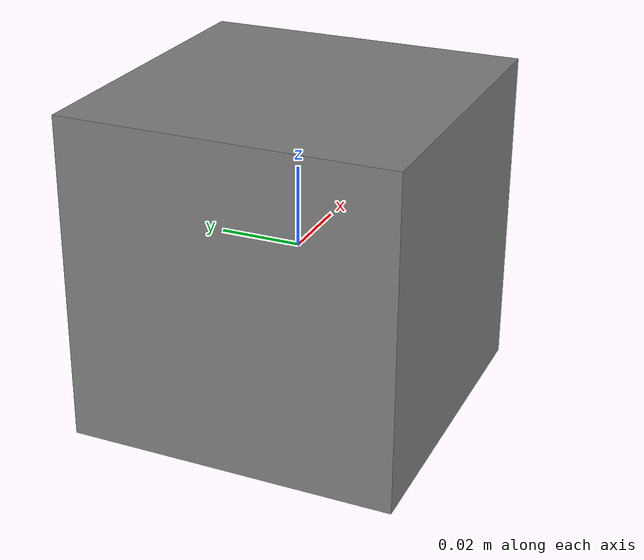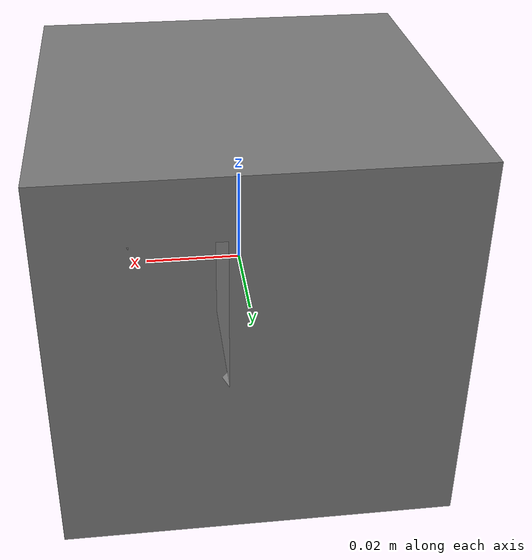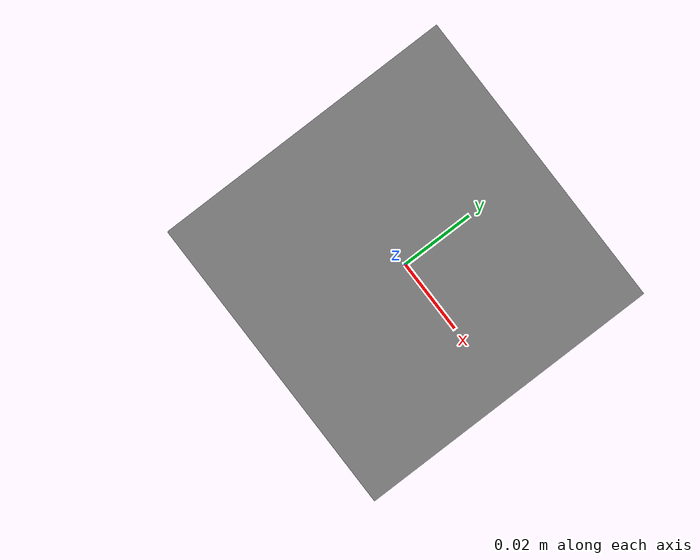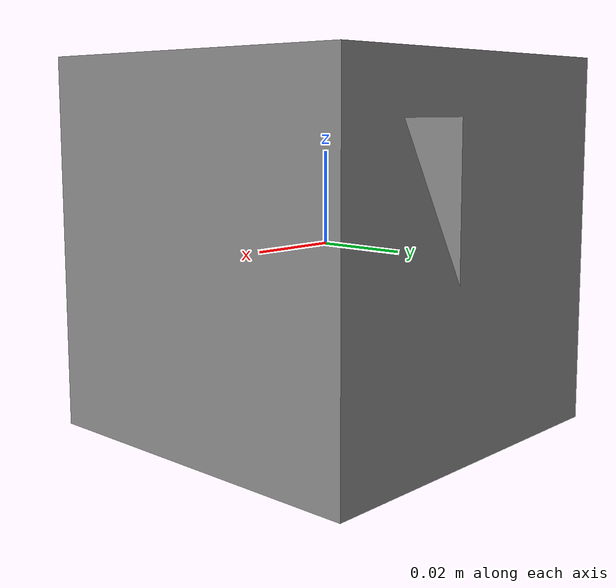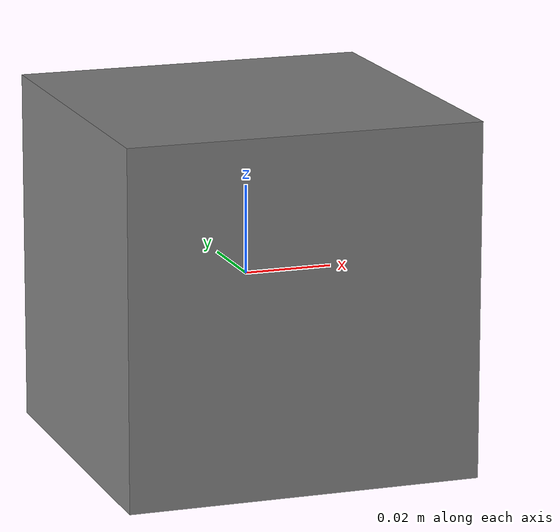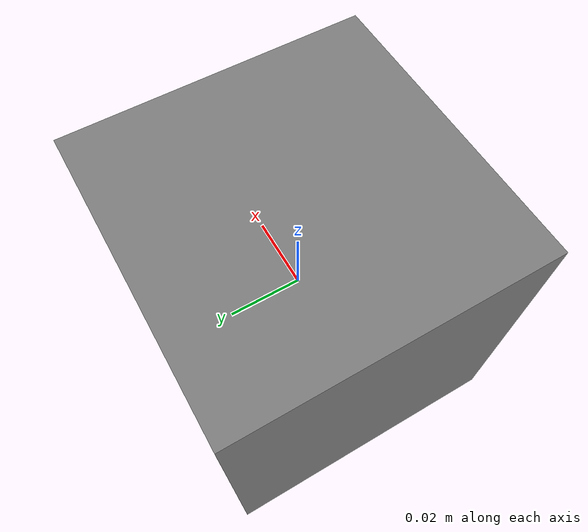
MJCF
<mujoco model="peg-hole">
	<default>
		<default class="visual">
			<geom type="mesh" contype="0" conaffinity="0"/>
		</default>
		<default class="collision">
			<geom type="mesh" rgba="0.5 0.5 0.5 0.0" density="100"/>
		</default>
	</default>
	<asset>
		<mesh name="Keyshiftx_hole_visual" file="new_meshes/Keyshiftx_cube_bottle.obj" scale="1.00 1.00 1.00"/>
		<mesh name="Keyshiftx_hole_0" file="new_meshes/collision_meshes/Keyshiftx_cube_bottle_decomp_0.obj" scale="1.00 1.00 1.00"/>
		<mesh name="Keyshiftx_hole_1" file="new_meshes/collision_meshes/Keyshiftx_cube_bottle_decomp_1.obj" scale="1.00 1.00 1.00"/>
		<mesh name="Keyshiftx_hole_2" file="new_meshes/collision_meshes/Keyshiftx_cube_bottle_decomp_2.obj" scale="1.00 1.00 1.00"/>
		<mesh name="Keyshiftx_hole_3" file="new_meshes/collision_meshes/Keyshiftx_cube_bottle_decomp_3.obj" scale="1.00 1.00 1.00"/>
		<mesh name="Keyshiftx_hole_4" file="new_meshes/collision_meshes/Keyshiftx_cube_bottle_decomp_4.obj" scale="1.00 1.00 1.00"/>
		<mesh name="Keyshiftx_hole_5" file="new_meshes/collision_meshes/Keyshiftx_cube_bottle_decomp_5.obj" scale="1.00 1.00 1.00"/>
		<mesh name="Keyshiftx_hole_6" file="new_meshes/collision_meshes/Keyshiftx_cube_bottle_decomp_6.obj" scale="1.00 1.00 1.00"/>
		<mesh name="Keyshiftx_hole_7" file="new_meshes/collision_meshes/Keyshiftx_cube_bottle_decomp_7.obj" scale="1.00 1.00 1.00"/>
		<mesh name="Keyshiftx_hole_8" file="new_meshes/collision_meshes/Keyshiftx_cube_bottle_decomp_8.obj" scale="1.00 1.00 1.00"/>
		<mesh name="Keyshiftx_hole_9" file="new_meshes/collision_meshes/Keyshiftx_cube_bottle_decomp_9.obj" scale="1.00 1.00 1.00"/>
		<mesh name="Keyshiftx_hole_10" file="new_meshes/collision_meshes/Keyshiftx_cube_bottle_decomp_10.obj" scale="1.00 1.00 1.00"/>
		<mesh name="Keyshiftx_hole_11" file="new_meshes/collision_meshes/Keyshiftx_cube_bottle_decomp_11.obj" scale="1.00 1.00 1.00"/>
		<mesh name="Keyshiftx_hole_12" file="new_meshes/collision_meshes/Keyshiftx_cube_bottle_decomp_12.obj" scale="1.00 1.00 1.00"/>
		<mesh name="Keyshiftx_hole_13" file="new_meshes/collision_meshes/Keyshiftx_cube_bottle_decomp_13.obj" scale="1.00 1.00 1.00"/>
	</asset>
	<worldbody>
		<body name="Keyshiftx_hole">
			<body name="object">
				<geom name="Keyshiftx_hole_0" class="collision" friction="0.01 0.3 0.0001" mesh="Keyshiftx_hole_0" group="0"/>
				<geom name="Keyshiftx_hole_1" class="collision" friction="0.01 0.3 0.0001" mesh="Keyshiftx_hole_1" group="0"/>
				<geom name="Keyshiftx_hole_2" class="collision" friction="0.01 0.3 0.0001" mesh="Keyshiftx_hole_2" group="0"/>
				<geom name="Keyshiftx_hole_3" class="collision" friction="0.01 0.3 0.0001" mesh="Keyshiftx_hole_3" group="0"/>
				<geom name="Keyshiftx_hole_4" class="collision" friction="0.01 0.3 0.0001" mesh="Keyshiftx_hole_4" group="0"/>
				<geom name="Keyshiftx_hole_5" class="collision" friction="0.01 0.3 0.0001" mesh="Keyshiftx_hole_5" group="0"/>
				<geom name="Keyshiftx_hole_6" class="collision" friction="0.01 0.3 0.0001" mesh="Keyshiftx_hole_6" group="0"/>
				<geom name="Keyshiftx_hole_7" class="collision" friction="0.01 0.3 0.0001" mesh="Keyshiftx_hole_7" group="0"/>
				<geom name="Keyshiftx_hole_8" class="collision" friction="0.01 0.3 0.0001" mesh="Keyshiftx_hole_8" group="0"/>
				<geom name="Keyshiftx_hole_9" class="collision" friction="0.01 0.3 0.0001" mesh="Keyshiftx_hole_9" group="0"/>
				<geom name="Keyshiftx_hole_10" class="collision" friction="0.01 0.3 0.0001" mesh="Keyshiftx_hole_10" group="0"/>
				<geom name="Keyshiftx_hole_11" class="collision" friction="0.01 0.3 0.0001" mesh="Keyshiftx_hole_11" group="0"/>
				<geom name="Keyshiftx_hole_12" class="collision" friction="0.01 0.3 0.0001" mesh="Keyshiftx_hole_12" group="0"/>
				<geom name="Keyshiftx_hole_13" class="collision" friction="0.01 0.3 0.0001" mesh="Keyshiftx_hole_13" group="0"/>
				<geom name="Keyshiftx_hole_visual" class="visual" mesh="Keyshiftx_hole_visual" group="1"/>
			</body>
			<site rgba="0 0 0 0" size="0.005" pos="0 0 0" name="bottom_site"/>
			<site rgba="0 0 0 0" size="0.005" pos="0 0 0" name="top_site"/>
			<site rgba="0 0 0 0" size="0.005" pos="0 0 0" name="horizontal_radius_site"/>
		</body>
	</worldbody>
</mujoco>
